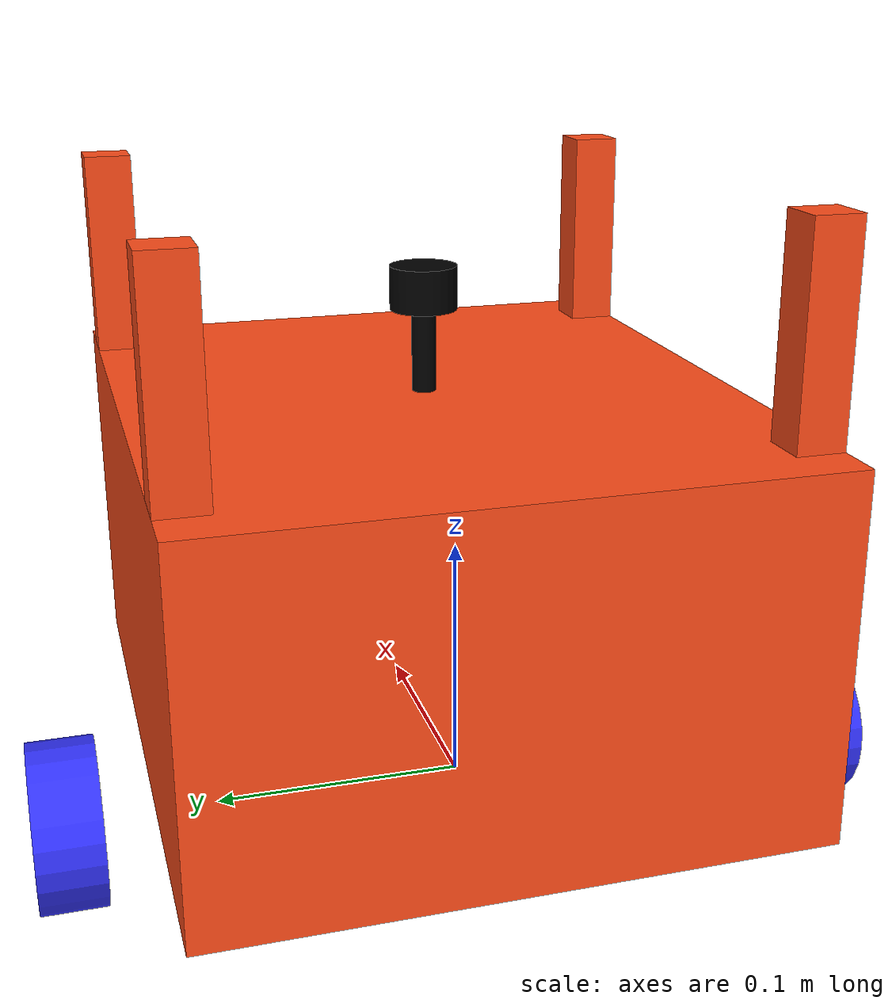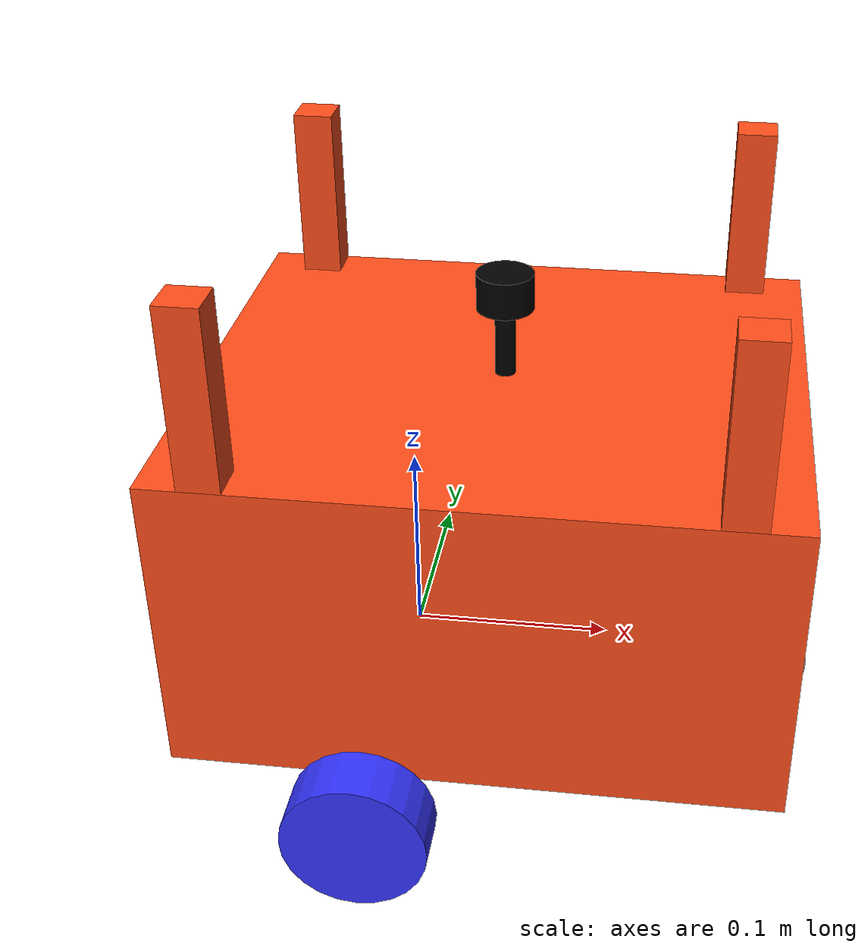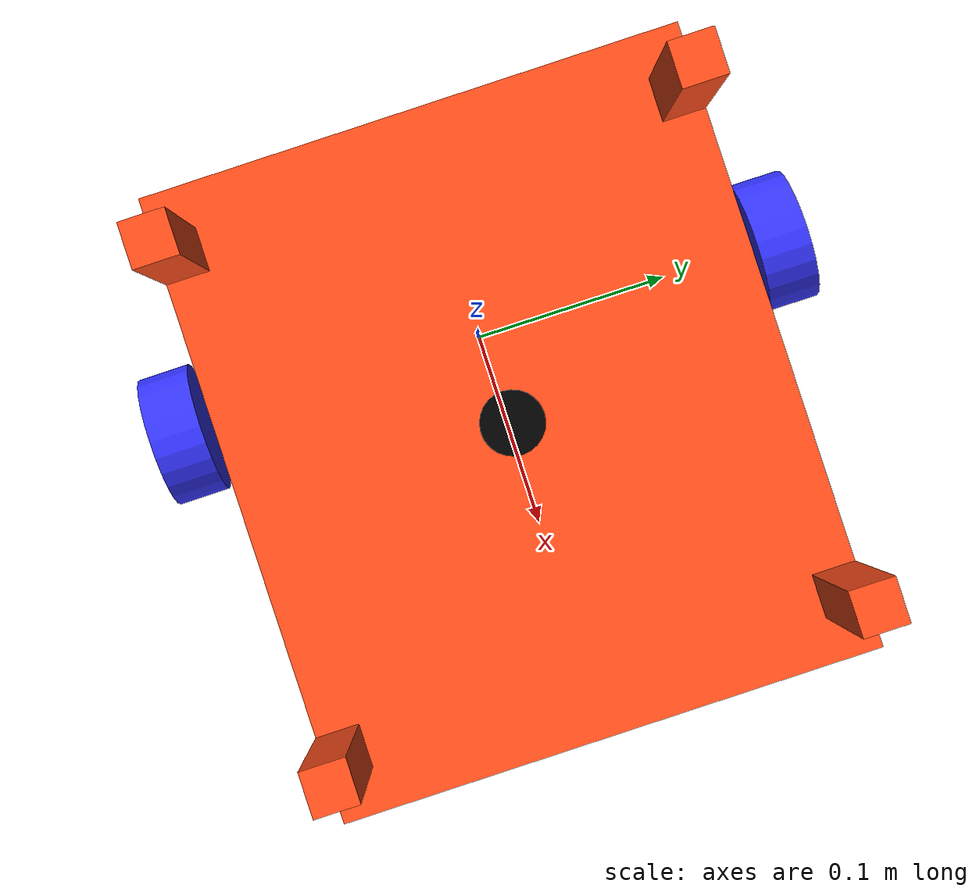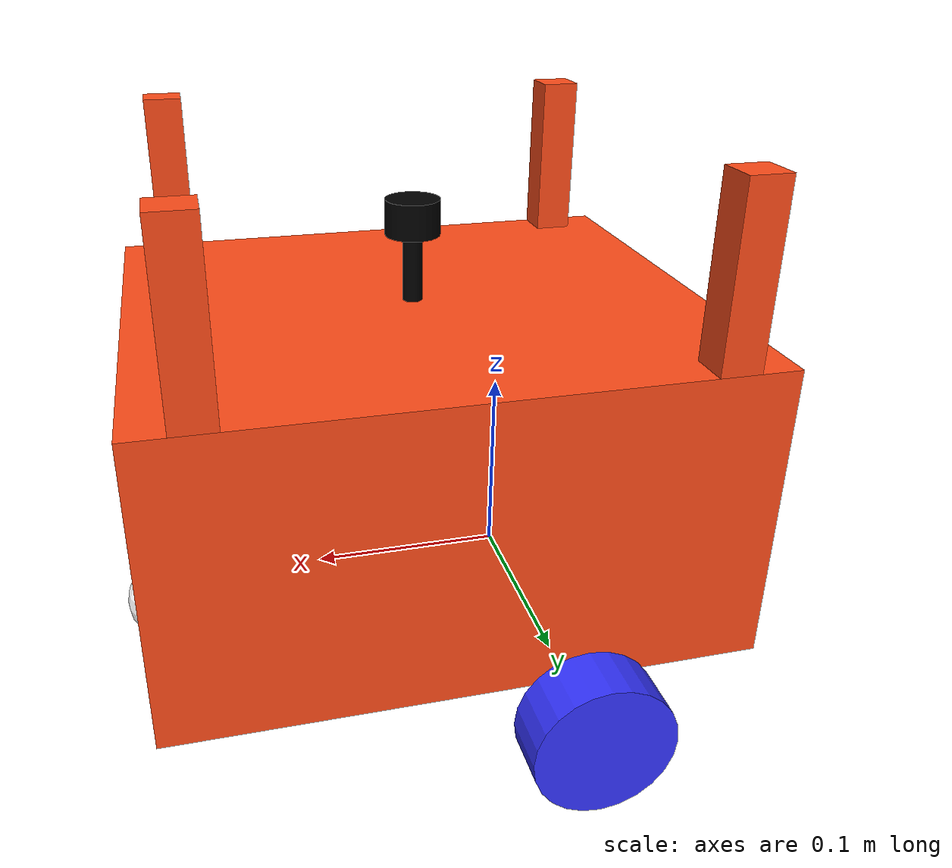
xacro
<?xml version="1.0"?>
<robot xmlns:xacro="http://www.ros.org/wiki/xacro"  name="robot">

    <xacro:arg name="use_ros2_control" default="true"/>
    <xacro:arg name="sim_mode" default="false"/>

    <xacro:include filename="robot_core.xacro" />

    <xacro:if value="$(arg use_ros2_control)">
        <xacro:include filename="ros2_control.xacro" />
    </xacro:if>
    <xacro:unless value="$(arg use_ros2_control)">
        <xacro:include filename="gazebo_control.xacro" />
    </xacro:unless>
    <xacro:include filename="lidar.xacro" />
    <xacro:include filename="imu.xacro" />
</robot>

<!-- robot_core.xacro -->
<robot xmlns:xacro="http://www.ros.org/wiki/xacro" >

    <xacro:include filename="inertial_macros.xacro"/>
    <xacro:property name="chassis_mass" value="1.0"/>

    <xacro:property name="caster_wheel_radius" value="0.022775"/>
    <xacro:property name="caster_wheel_mass" value="0.01"/>
    <xacro:property name="caster_wheel_offset_x" value="0.296"/>
    <xacro:property name="caster_wheel_offset_z" value="${-wheel_radius + caster_wheel_radius}"/>

    <xacro:property name="base_link_chassis_offset_z" value="0.0761"/>
    <xacro:property name="base_link_chassis_offset_x" value="0.0464"/>

    <xacro:property name="chassis_length" value="0.290"/>
    <xacro:property name="chassis_width" value="0.250"/>
    <xacro:property name="chassis_height" value="0.1522"/>
    <xacro:property name="wheel_offset_x" value="0"/>
    <xacro:property name="wheel_offset_y" value="0.1596"/>
    <xacro:property name="wheel_offset_z" value="0"/>
    <xacro:property name="wheel_radius" value="0.03375"/>
    <xacro:property name="wheel_thickness" value="0.0265"/>
    <xacro:property name="wheel_mass" value="0.05"/>
    <xacro:property name="pillar_height" value="0.087"/>
    <xacro:property name="pillar_width" value="0.02"/>

    <material name="white">
        <color rgba="1 1 1 1" />
    </material>

    <material name="orange">
        <color rgba="1 0.3 0.1 1"/>
    </material>

    <material name="blue">
        <color rgba="0.2 0.2 1 1"/>
    </material>

    <material name="black">
        <color rgba="0 0 0 1"/>
    </material>

    <material name="red">
        <color rgba="1 0 0 1"/>
    </material>

    <!-- BASE LINK -->
    <link name="base_link">
    </link>

    <joint name="base_footprint_joint" type="fixed">
        <parent link="base_link"/>
        <child link="base_footprint"/>
        <origin xyz="0 0 0" rpy="0 0 0"/>
    </joint>

    <link name="base_footprint">
    </link>

    <!-- CHASSIS LINK -->

    <joint name="chassis_joint" type="fixed">
        <parent link="base_link"/>
        <child link="chassis"/>
        <origin xyz="${base_link_chassis_offset_x} 0 ${base_link_chassis_offset_z}"/>
    </joint>

    <link name="chassis">
        <visual>
            <origin xyz="0 0 0"/>
            <geometry>
                <box size="${chassis_length} ${chassis_width} ${chassis_height}"/>
            </geometry>
            <material name="orange"/>
        </visual>

        <visual> <!--front left-->
            <origin xyz="${chassis_length/2 - pillar_width - pillar_width/2} ${chassis_width/2 - pillar_width/2} ${chassis_height/2 + pillar_height/2}"/>
            <geometry>
                <box size="${pillar_width} ${pillar_width} ${pillar_height}"/>
            </geometry>
            <material name="orange"/>
        </visual>
        <visual> <!--front right-->
            <origin xyz="${chassis_length/2 - pillar_width - pillar_width/2} ${-chassis_width/2 + pillar_width/2} ${chassis_height/2 + pillar_height/2}"/>
            <geometry>
                <box size="${pillar_width} ${pillar_width} ${pillar_height}"/>
            </geometry>
            <material name="orange"/>
        </visual>
        <visual> <!--back left-->
            <origin xyz="${-chassis_length/2 + pillar_width + pillar_width/2} ${chassis_width/2 - pillar_width/2} ${chassis_height/2 + pillar_height/2}"/>
            <geometry>
                <box size="${pillar_width} ${pillar_width} ${pillar_height}"/>
            </geometry>
            <material name="orange"/>
        </visual>

        <visual> <!-- back right -->
            <origin xyz="${-chassis_length/2 + pillar_width + pillar_width/2} ${-chassis_width/2 + pillar_width/2} ${chassis_height/2 + pillar_height/2}"/>
            <geometry>
                <box size="${pillar_width} ${pillar_width} ${pillar_height}"/>
            </geometry>
            <material name="orange"/>
        </visual>

        <collision>
            <origin xyz="0 0 0"/>
            <geometry>
                <box size="${chassis_length} ${chassis_width} ${chassis_height}"/>
            </geometry>
        </collision>
        <xacro:inertial_box mass="0.5" x="${chassis_length}" y="${chassis_width}" z="${chassis_height}">
            <origin xyz="0 0 0" rpy="0 0 0"/>
        </xacro:inertial_box>
    </link>

    <gazebo reference="chassis">
        <material>Gazebo/Orange</material>
    </gazebo>

    <!-- LEFT WHEEL LINK -->

    <joint name="left_wheel_joint" type="continuous">
        <parent link="base_link"/>
        <child link="left_wheel"/>
        <origin xyz="0 ${wheel_offset_y} 0" rpy="-${pi/2} 0 0" />
        <axis xyz="0 0 1"/>
    </joint>

    <link name="left_wheel">
        <visual>
            <geometry>
                <cylinder radius="${wheel_radius}" length="${wheel_thickness}"/>
            </geometry>
            <material name="blue"/>
        </visual>
        <collision>
            <geometry>
                <sphere radius="${wheel_radius}"/>
            </geometry>
        </collision>
        <xacro:inertial_cylinder mass="${wheel_mass}" length="${wheel_thickness}" radius="${wheel_radius}">
            <origin xyz="0 0 0" rpy="0 0 0"/>
        </xacro:inertial_cylinder>
    </link>

    <gazebo reference="left_wheel">
        <material>Gazebo/Blue</material>
    </gazebo>

    <!-- RIGHT WHEEL LINK -->

    <joint name="right_wheel_joint" type="continuous">
        <parent link="base_link"/>
        <child link="right_wheel"/>
        <origin xyz="0 ${-wheel_offset_y} 0" rpy="${pi/2} 0 0" />
        <axis xyz="0 0 -1"/>
    </joint>

    <link name="right_wheel">
        <visual>
            <geometry>
                <cylinder radius="${wheel_radius}" length="${wheel_thickness}"/>
            </geometry>
            <material name="blue"/>
        </visual>
        <collision>
            <geometry>
                <sphere radius="${wheel_radius}"/>
            </geometry>
        </collision>
        <xacro:inertial_cylinder mass="${wheel_mass}" length="${wheel_thickness}" radius="${wheel_radius}">
            <origin xyz="0 0 0" rpy="0 0 0"/>
        </xacro:inertial_cylinder>
    </link>

    <gazebo reference="right_wheel">
        <material>Gazebo/Blue</material>
    </gazebo>

    <!-- CASTER WHEEL LINK -->

    <joint name="caster_wheel_joint_front" type="fixed">
        <parent link="base_link"/>
        <child link="caster_wheel_front"/>
        <origin xyz="0.184 0 ${caster_wheel_offset_z}"/>
    </joint>

    <link name="caster_wheel_front">
        <visual>
            <geometry>
                <sphere radius="${caster_wheel_radius}"/>
            </geometry>
            <material name="white"/>
        </visual>
        <collision>
            <geometry>
                <sphere radius="${caster_wheel_radius}"/>
            </geometry>
        </collision>
        <xacro:inertial_sphere mass="${caster_wheel_mass}" radius="${caster_wheel_radius}">
            <origin xyz="0 0 0" rpy="0 0 0"/>
        </xacro:inertial_sphere>
    </link>

    <gazebo reference="caster_wheel_front">
        <material>Gazebo/White</material>
        <mu1 value="0.001"/>
        <mu2 value="0.001"/>
    </gazebo>

</robot>

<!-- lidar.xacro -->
<robot xmlns:xacro="http://www.ros.org/wiki/xacro" >

    <xacro:property name="lidar_height" value="0.018"/>
    <xacro:property name="lidar_radius" value="0.01384"/>
    <xacro:property name="lidar_offset" value="0.04326"/>
    <xacro:property name="lidar_holder_height" value="0.034"/>
    <xacro:property name="lidar_holder_radius" value="0.005"/>

    <joint name="laser_joint" type="fixed">
        <parent link="chassis"/>
        <child link="laser_frame"/>
        <origin xyz="0 0 ${chassis_height/2 + lidar_offset}" rpy="0 0 0"/>
    </joint>

    <link name="laser_frame">
        <visual>
            <geometry>
                <cylinder radius="${lidar_radius}" length="${lidar_height}"/>
            </geometry>
            <material name="black"/>
        </visual>
        <visual>
            <origin xyz="0 0 -0.02616" rpy="0 0 0"/>
            <geometry>
                <cylinder radius="${lidar_holder_radius}" length="${lidar_holder_height}"/>
            </geometry>
            <material name="black"/>
        </visual>

        <collision>
            <geometry>
                <cylinder radius="0.05" length="0.04"/>
            </geometry>
        </collision>
        <xacro:inertial_cylinder mass="0.1" length="0.04" radius="0.05">
            <origin xyz="0 0 0" rpy="0 0 0"/>
        </xacro:inertial_cylinder>
    </link>

    <gazebo reference="laser_frame">
        <material>Gazebo/Black</material>

        <sensor name="laser" type="gpu_lidar">
            <pose> 0 0 0 0 0 0 </pose>
            <visualize>false</visualize>
            <update_rate>10</update_rate>
            <lidar>
                <scan>
                    <horizontal>
                        <samples>360</samples>
                        <min_angle>-3.14</min_angle>
                        <max_angle>3.14</max_angle>
                    </horizontal>
                </scan>
                <range>
                    <min>0.3</min>
                    <max>12</max>
                </range>
            </lidar>
            <topic>scan</topic>
            <gz_frame_id>laser_frame</gz_frame_id>
        </sensor>
    </gazebo>

</robot>

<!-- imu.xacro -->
<robot xmlns:xacro="http://www.ros.org/wiki/xacro" >

    <joint name="imu_joint" type="fixed">
        <parent link="chassis"/>
        <child link="imu_frame"/>
        <origin xyz="0 0 0" rpy="0 0 0"/>
    </joint>

    <link name="imu_frame"></link>

    <gazebo reference="imu_frame">
        <sensor name="imu_sensor" type="imu">
            <always_on>true</always_on>
            <update_rate>5</update_rate>
            <topic>imu</topic>
            <imu>
                <angular_velocity>
                    <x>
                    <noise type="gaussian">
                        <mean>0.0</mean>
                        <stddev>2e-4</stddev>
                    </noise>
                    </x>
                    <y>
                    <noise type="gaussian">
                        <mean>0.0</mean>
                        <stddev>2e-4</stddev>
                    </noise>
                    </y>
                    <z>
                    <noise type="gaussian">
                        <mean>0.0</mean>
                        <stddev>2e-4</stddev>
                    </noise>
                    </z>
                </angular_velocity>
                <linear_acceleration>
                    <x>
                    <noise type="gaussian">
                        <mean>0.0</mean>
                        <stddev>1.7e-2</stddev>
                    </noise>
                    </x>
                    <y>
                    <noise type="gaussian">
                        <mean>0.0</mean>
                        <stddev>1.7e-2</stddev>
                    </noise>
                    </y>
                    <z>
                    <noise type="gaussian">
                        <mean>0.0</mean>
                        <stddev>1.7e-2</stddev>
                    </noise>
                    </z>
                </linear_acceleration>
            </imu>
            <gz_frame_id>imu_frame</gz_frame_id>
        </sensor>
    </gazebo>
</robot>
